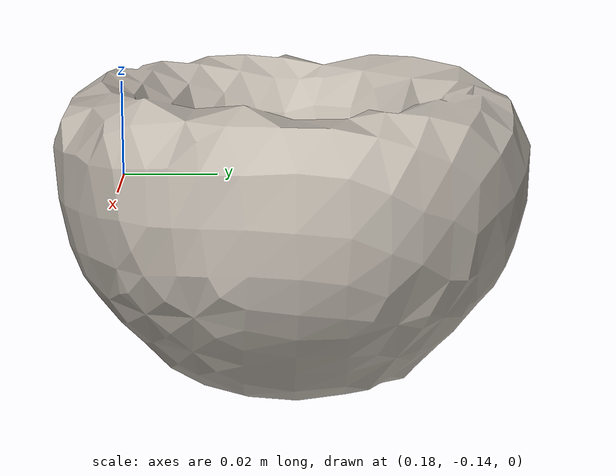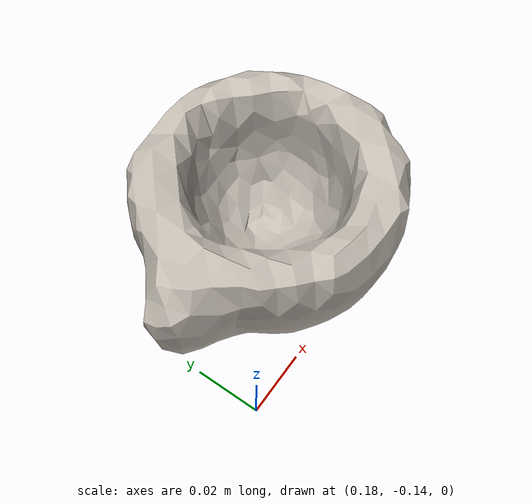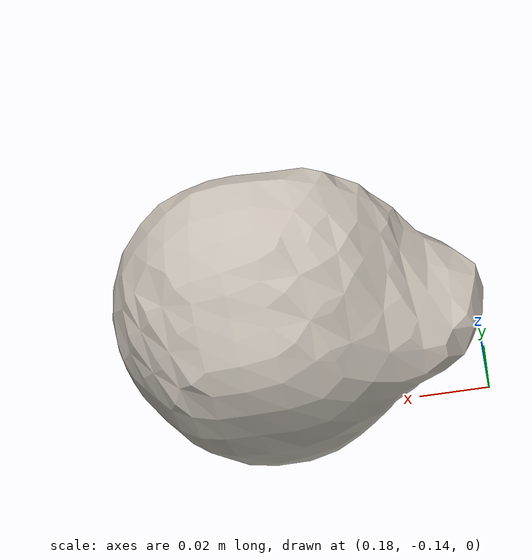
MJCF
<mujoco model="mug_kitchen_set_kitchen_set_mug_M">
  <asset>
    <mesh file="meshes/mug_kitchen_set_kitchen_set_mug_M.stl" name="mug_mesh" scale="0.5937977829050591 0.5937977829050591 0.5937977829050591"/>
    <texture type="cube" file="/home/jbw/Projects/gc-reorientation/bin_env/assets/textures/ceramic.png" rgb1="1 1 1" name="tex-mug"/>
    <material name="mug" reflectance="0.5" texrepeat="3 3" texture="tex-mug"/>
  </asset>
  <worldbody>
    <body>
      <body name="object">
        <geom pos="0.23351579307799308 -0.10556663567594572 0.0009150721630036573" quat="1 0 0 0" mesh="mug_mesh" type="mesh" solref="0.02 1" density="0" friction="1.0 1.0 1.0" material="mug" group="0" condim="4"/>
      </body>
      <site rgba="0 0 0 0" size="0.005" pos="0 0 -0.05" name="bottom_site"/>
      <site rgba="0 0 0 0" size="0.005" pos="0 0 0.03" name="top_site"/>
      <site rgba="0 0 0 0" size="0.005" pos="0.02 0.015 0" name="horizontal_radius_site"/>
    </body>
  </worldbody>
</mujoco>
